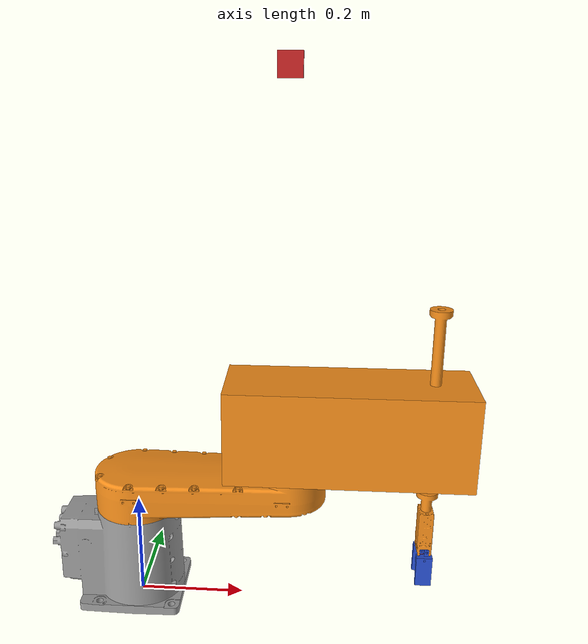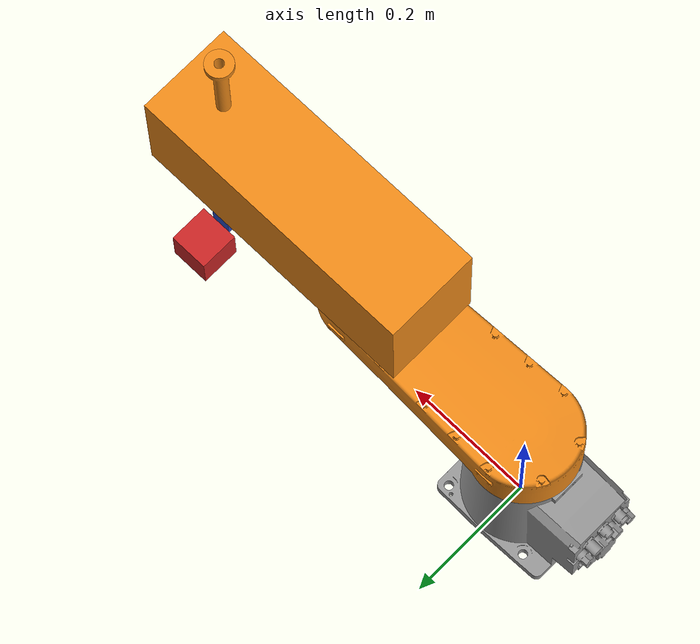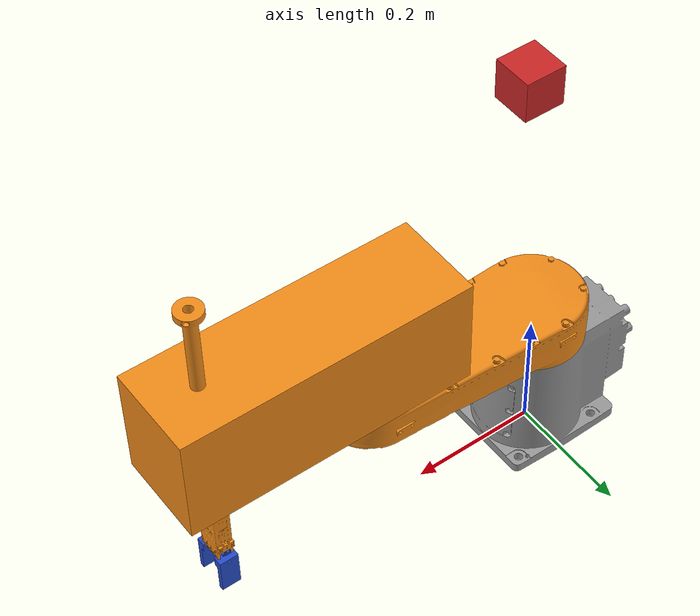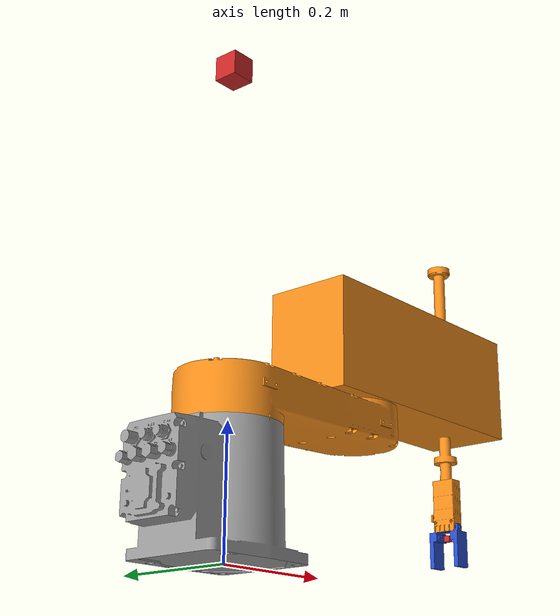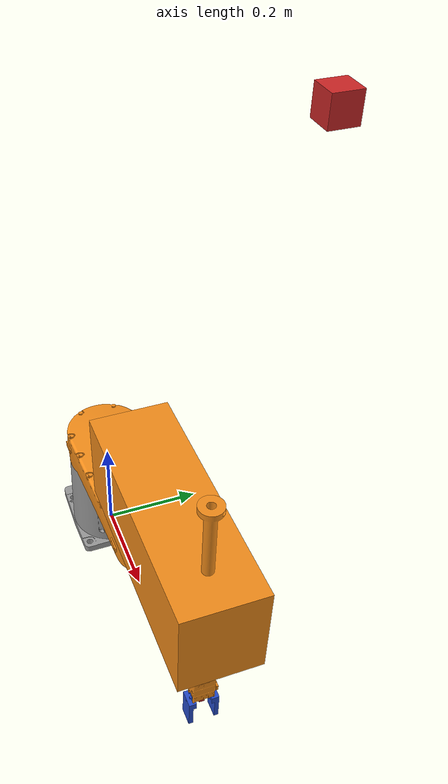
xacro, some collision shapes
<?xml version="1.0"?>

<robot name="tomi_arm" xmlns:xacro="http://www.ros.org/wiki/xacro">

  <!-- RViz colors -->
  <xacro:include filename="$(find bme_ros_pp_project)/urdf/materials.xacro" />

  <!-- Transmisions -->
  <xacro:include filename="$(find bme_ros_pp_project)/urdf/transmission.xacro" />
  <!-- Gazebo plugin -->
  <xacro:include filename="$(find bme_ros_pp_project)/urdf/tomi_arm.gazebo" />

  <!-- Global reference link -->
  <link name="world"/>

  <joint name="fixed_base" type="fixed">
    <parent link="world"/>
    <child link="link_0"/>
  </joint>

  <!-- Link 0 -->
  <link name="link_0">
    <inertial>
      <mass value="7.57"/>
      <origin xyz="0.0 0.0 0.0957"/>
      <inertia ixx="0.0368" ixy="0.0" ixz="0.0"
               iyy="0.0368" iyz="0.0"
               izz="0.0273"
      />
    </inertial>
    <collision>
      <geometry>
        <cylinder radius="0.085" length="0.1914"/>
      </geometry>
      <origin xyz="0.0 0.0 0.0957" rpy="0.0 0.0 0"/>
    </collision>
    <visual>
      <geometry>
        <mesh scale = "1 1 1" filename = "package://bme_ros_pp_project/meshes/Link0.dae"/>
      </geometry>
      <material name="grey"/>
      <origin xyz="0.0 0.0 0.0" rpy="0.0 0.0 0.0"/>
    </visual>
  </link>

  <!-- Axis1 - Link 0 - Link 1 -->
  <joint name="Axis1" type="revolute">
    <limit lower="-2.6179" upper="2.6179" effort="5" velocity="7.33"/> <!-- +-150° , 420°/s which is 7.33 rad/s-->
    <parent link="link_0"/>
    <child link="link_1"/>
    <axis xyz="0 0 1"/>
    <origin xyz="0.0 0.0 0.1914" rpy="0.0 0.0 0.0"/>
    <dynamics damping="0.0" friction="0.0"/>
  </joint>

  <!-- Link 1 -->
  <link name="link_1">
    <inertial>
      <mass value="6.09"/>
      <origin xyz="0.142 0.0 0.043" rpy="0.0 0.0 0.0"/>
      <inertia ixx="0.0174" ixy="0.0" ixz="0.0"
               iyy="0.1039" iyz="0.0"
               izz="0.1138"
      />
    </inertial>
    <collision>
      <geometry>
        <box size="0.444 0.164 0.086"/>
      </geometry>
      <origin xyz="0.142 0.0 0.043" rpy="0.0 0.0 0.0"/>
    </collision>
    <visual>
      <geometry>
        <mesh scale = "1 1 1" filename = "package://bme_ros_pp_project/meshes/Link1.dae"/>
      </geometry>
      <material name="orange"/>
      <origin xyz="0.0 0.0 0.0" rpy="0.0 0.0 0.0"/>
    </visual>
  </link>

  <!-- Joint 2 - Link 1 - Link 2 -->
  <joint name="Axis2" type="revolute">
    <limit lower="-2.5307" upper="2.5307" effort="5" velocity="12.23"/> <!-- +- 145° which is +- 2.5307 rad , 701°/s which is 12.23 rad/s -->
    <parent link="link_1"/>
    <child link="link_2"/>
    <axis xyz="0 0 1"/>
    <origin xyz="0.290 0.0 0.086" rpy="0.0 0.0 0.0"/>
    <dynamics damping="0.0" friction="0.0"/>
  </joint>

  <!-- Link 2  -->
  <link name="link_2">
    <inertial>
      <mass value="9.01"/>
      <origin xyz="0.1075 0.0 0.089" rpy="0.0 0.0 0.0"/>
      <inertia ixx="0.0398" ixy="0.0" ixz="0.0"
               iyy="0.1764" iyz="0.0"
               izz="0.1686"
      />
    </inertial>
    <collision>
      <geometry>
        <box size="0.451 0.146 0.178"/>
      </geometry>
      <origin xyz="0.1075 0.0 0.089" rpy="0.0 0.0 0.0"/>
    </collision>
    <visual>
      <geometry>
        <mesh scale = "1 1 1" filename = "package://bme_ros_pp_project/meshes/Link2.dae"/>
      </geometry>
      <material name="orange"/>
      <origin xyz="0.0 0.0 0.0" rpy="0.0 0.0 0.0"/>
    </visual>
  </link>

  <!-- Joint 3 - Link 2 to Link 3 , fictive link (translation)-->
  <joint name="Axis3" type="prismatic">
    <limit lower="-0.18" upper="0" effort="10" velocity="1.1"/><!-- -180 .. 0 mm , 1100mm/s which is 1.1 m/s -->
    <parent link="link_2"/>
    <child link="link_3"/>
    <axis xyz="0 0 1"/>
    <origin xyz="0.260 0.0 -0.0765" rpy="0.0 0.0 0.0"/>
    <dynamics damping="0.0" friction="0.0"/>
  </joint>

  <link name="link_3">
    <inertial>
      <mass value="0.05"/>
      <origin xyz="0 0 0.1975" rpy="0.0 0.0 0.0"/>
      <inertia ixx="0.0001" ixy="0.0" ixz="0.0"
               iyy="0.0001" iyz="0.0"
               izz="0.0001"
      />
    </inertial>
  </link>

  <!-- Joint 4 - Link 3 to Link 4 (rotation)-->
  <joint name="Axis4" type="revolute">
    <limit lower="-6.98" upper="6.98" effort="1" velocity="43.63"/> <!-- +- 400° which is +- 6.98 rad , 2500°/s which is 43.63 rad/s -->
    <parent link="link_3"/>
    <child link="link_4"/>
    <axis xyz="0 0 1"/>
    <origin xyz="0.0 0.0 0.0" rpy="0.0 0.0 0.0"/>
    <dynamics damping="0.0" friction="0.0"/>
  </joint>

  <!-- Link 4 -->
  <link name="link_4">
    <inertial>
      <mass value="0.18"/>
      <origin xyz="0.0 0.0 0.1975" rpy="0.0 0.0 0.0"/>
      <inertia ixx="0.0023" ixy="0.0" ixz="0.0"
               iyy="0.0023" iyz="0.0"
               izz="0.00"
      />
    </inertial>
    <collision>
      <geometry>
        <cylinder radius="0.01" length="0.395"/>
      </geometry>
      <origin xyz="0.0 0.0 0.1975" rpy="0.0 0.0 0.0"/>
    </collision>
    <visual>
      <geometry>
      <mesh scale = "1 1 1" filename = "package://bme_ros_pp_project/meshes/Link3.dae"/>
      </geometry>
      <material name="orange"/>
      <origin xyz="0.0 0.0 0.0" rpy="0.0 0.0 0.0"/>
    </visual>
  </link>

  <!-- Link 4 - E -->
  <joint name="EndEffectorFIX" type="fixed">
    <parent link="link_4"/>
    <child link="link_E"/>
  </joint>

  <!-- Link 4 -->
  <link name="link_E">
    <inertial>
      <mass value="0.2"/>
      <origin xyz="0.0 0.0 0.0" rpy="0.0 0.0 0.0"/>
      <inertia ixx="0.0011" ixy="0.0" ixz="0.0"
               iyy="0.0011" iyz="0.0"
               izz="0.0004"
      />
    </inertial>
    <collision>
      <geometry>
        <box size="0.026 0.04 0.0884"/>
      </geometry>
      <origin xyz="0.0 0.0 -0.0442" rpy="0.0 0.0 0.0"/>
    </collision>
    <visual>
      <geometry>
        <mesh scale = "1 1 1" filename = "package://bme_ros_pp_project/meshes/M.dae"/>
      </geometry>
      <material name="orange"/>
      <origin xyz="0.0 0.0 0.0" rpy="0.0 0.0 0.0"/>
    </visual>
  </link>

<!-- Left finger joint -->
  <joint name="left_finger_joint" type="prismatic">
    <limit lower="-0.016" upper="0.01" effort="400" velocity="4.0"/>
    <parent link="link_E"/>
    <child link="left_finger"/>
    <axis xyz="0 -1 0"/>
    <origin xyz="0.0 0.00 0.00" />
  </joint>

  <!-- Left finger link -->
  <link name="left_finger">
    <inertial>
      <mass value="0.1"/>
      <origin xyz="0.0 0.0 0.0" rpy="0.0 0.0 0.0"/>
      <inertia ixx="0.00009" ixy="0.0" ixz="0.0"
               iyy="0.00009" iyz="0.0"
               izz="0.00002"
      />
    </inertial>
    <collision>
      <geometry>
        <box size="0.03 0.008 0.045"/>
      </geometry>
      <origin xyz="0.0 -0.02399 -0.12665" rpy="0.0 0.0 0.0"/>
    </collision>
    <visual>
      <geometry>
        <mesh scale = "1 1 1" filename = "package://bme_ros_pp_project/meshes/MP1.dae"/>
      </geometry>
      <material name="blue"/>
      <origin xyz="0.0 0.0 0.0" rpy="0.0 0.0 0.0"/>
    </visual>
  </link>

  <gazebo reference="left_finger">
    <kp>1000000.0</kp>
    <kd>100.0</kd>
    <mu1>15</mu1>
    <mu2>15</mu2>
    <fdir1>1 0 0</fdir1>
    <maxVel>1.0</maxVel>
    <minDepth>0.002</minDepth>
    <material>Gazebo/Blue</material>
  </gazebo>

  <!-- Right finger joint -->
  <joint name="right_finger_joint" type="prismatic">
    <limit lower="-0.0136" upper="0.01" effort="400" velocity="4.0"/>
    <parent link="link_E"/>
    <child link="right_finger"/>
    <axis xyz="0 1 0"/>
    <origin xyz="0.0 0.0 0.0" />
  </joint>

  <!-- Right finger link -->
  <link name="right_finger">
    <inertial>
      <mass value="0.1"/>
      <origin xyz="0.0 0.0 0.0" rpy="0.0 0.0 0.0"/>
      <inertia ixx="0.00009" ixy="0.0" ixz="0.0"
               iyy="0.00009" iyz="0.0"
               izz="0.00002"
      />
    </inertial>
    <collision>
      <geometry>
        <box size="0.03 0.008 0.045"/>
      </geometry>
      <origin xyz="0.0 0.02399 -0.12665" rpy="0.0 0.0 0.0"/>
    </collision>
    <visual>
      <geometry>
        <mesh scale = "1 1 1" filename = "package://bme_ros_pp_project/meshes/MP2.dae"/>
      </geometry>
      <material name="blue"/>
      <origin xyz="0.0 0.0 0.0" rpy="0.0 0.0 0.0"/>
    </visual>
  </link>

  <gazebo reference="right_finger">
    <kp>1000000.0</kp>
    <kd>100.0</kd>
    <mu1>15</mu1>
    <mu2>15</mu2>
    <fdir1>1 0 0</fdir1>
    <maxVel>1.0</maxVel>
    <minDepth>0.002</minDepth>
    <material>Gazebo/Blue</material>
  </gazebo>

  <!-- Gripper camera -->
  <joint type="fixed" name="gripper_camera_joint">
    <origin xyz="0.0 0.0 -0.1" rpy="0 1.5707 0"/>
    <child link="gripper_camera_link"/>
    <parent link="link_E"/>
  </joint>

  <link name='gripper_camera_link'>
    <pose>0 0 0 0 0 0</pose>
    <inertial>
      <mass value="1.0e-03"/>
      <origin xyz="0 0 0" rpy="0 0 0"/>
      <inertia
          ixx="1e-6" ixy="0" ixz="0"
          iyy="1e-6" iyz="0"
          izz="1e-6"
      />
    </inertial>

    <visual>
      <origin xyz="0 0 0" rpy="0 0 0"/>
      <geometry>
        <box size=".01 .01 .01"/>
      </geometry>
    </visual>

  </link>

  <gazebo reference="gripper_camera_link">
    <material>Gazebo/Red</material>
  </gazebo>

  <joint type="fixed" name="gripper_camera_optical_joint">
    <origin xyz="0 0 0" rpy="-1.5707 0 -1.5707"/>
    <child link="gripper_camera_link_optical"/>
    <parent link="gripper_camera_link"/>
  </joint>

  <link name="gripper_camera_link_optical">
  </link>

  <!-- Table camera -->
  <joint type="fixed" name="table_camera_joint">
    <origin xyz="0.275 0.275 1.0" rpy="0 1.5707 0"/>
    <child link="table_camera_link"/>
    <parent link="world"/>
  </joint>

  <link name='table_camera_link'>
    <pose>0 0 0 0 0 0</pose>
    <inertial>
      <mass value="1.0e-03"/>
      <origin xyz="0 0 0" rpy="0 0 0"/>
      <inertia
          ixx="1e-6" ixy="0" ixz="0"
          iyy="1e-6" iyz="0"
          izz="1e-6"
      />
    </inertial>

    <visual>
      <origin xyz="0 0 0" rpy="0 0 0"/>
      <geometry>
        <box size=".05 .05 .05"/>
      </geometry>
    </visual>

  </link>

  <gazebo reference="table_camera_link">
    <material>Gazebo/Red</material>
  </gazebo>

  <joint type="fixed" name="table_camera_optical_joint">
    <origin xyz="0 0 0" rpy="-1.5707 0 -1.5707"/>
    <child link="table_camera_link_optical"/>
    <parent link="table_camera_link"/>
  </joint>

  <link name="table_camera_link_optical">
  </link>

</robot>
